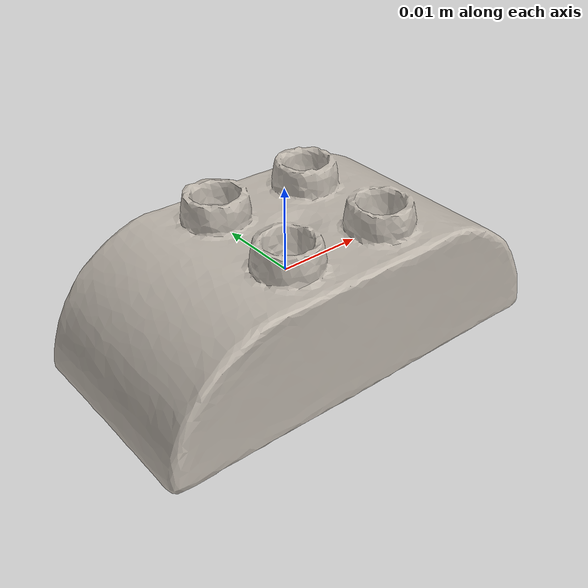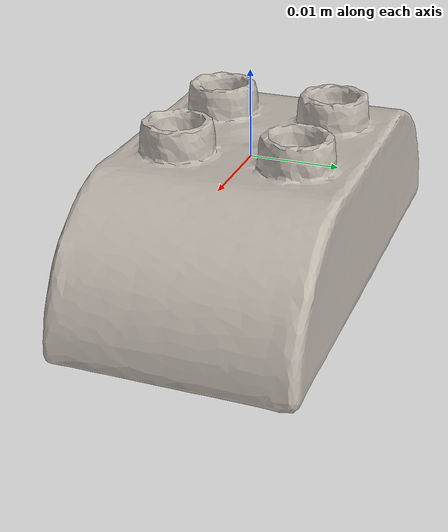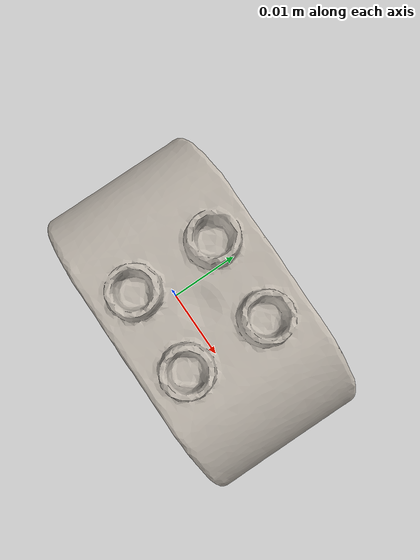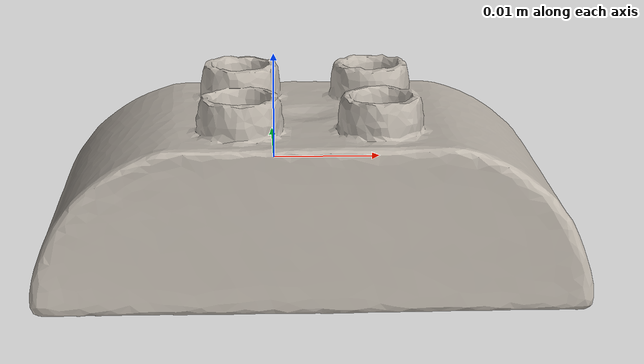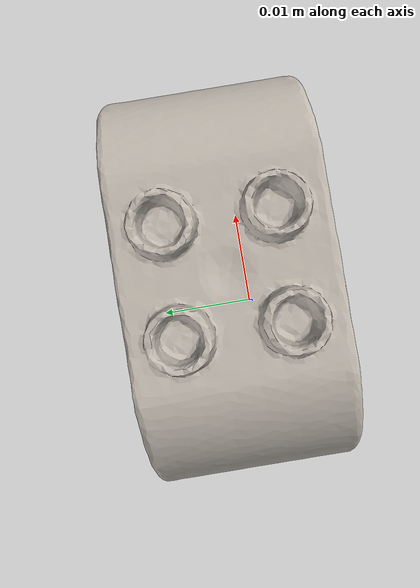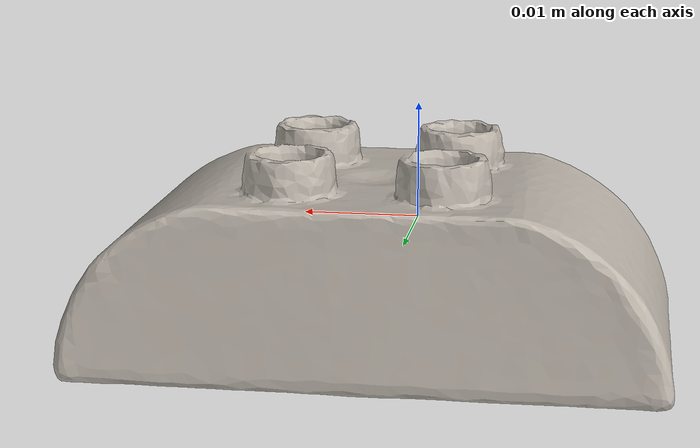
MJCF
<mujoco model="bread">
  <asset>
    <mesh file="nontextured.stl" name="obj_mesh" scale="0.8 0.8 0.8"/>
    <texture file="../../../../../textures/bread.png" type="2d" name="tex-bread" />
    <material name="bread" reflectance="0.7" texrepeat="15 15" texture="tex-bread" texuniform="true"/>
  </asset>
  <worldbody>
    <body>
      <body name="collision">
        <geom pos="0.0166045 0.0096335 -0.011486" mesh="obj_mesh" type="mesh" solimp="0.998 0.998 0.001" solref="0.001 1" density="50" friction="0.95 0.3 0.1"  material="bread" group="1" condim="4"/>
      </body>
      <body name="visual">
        <geom pos="0.0166045 0.0096335 -0.011486" mesh="obj_mesh" type="mesh" material="bread"  conaffinity="0" contype="0"  group="0" mass="0.0001"/>
        <geom pos="0.0166045 0.0096335 -0.011486" mesh="obj_mesh" type="mesh" material="bread"  conaffinity="0" contype="0"  group="1" mass="0.0001"/>
      </body>
      <site rgba="0 0 0 0" size="0.005" pos="0 0 -0.011963999999999999" name="bottom_site"/>
      <site rgba="0 0 0 0" size="0.005" pos="0 0 0.011963999999999999" name="top_site"/>
      <site rgba="0 0 0 0" size="0.005" pos="0.0320595 0.0162575 0.011963999999999999" name="horizontal_radius_site"/>
    </body>
  </worldbody>
</mujoco>
